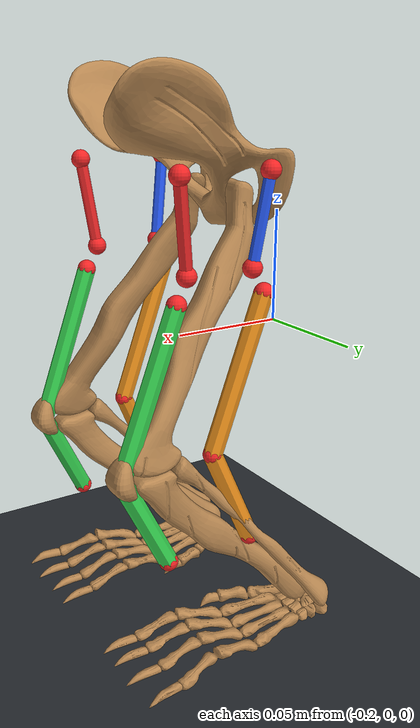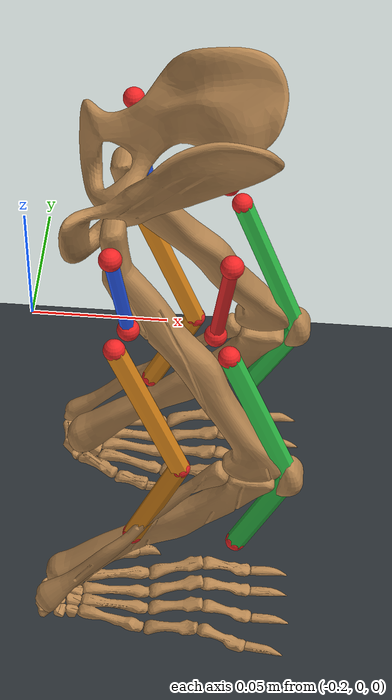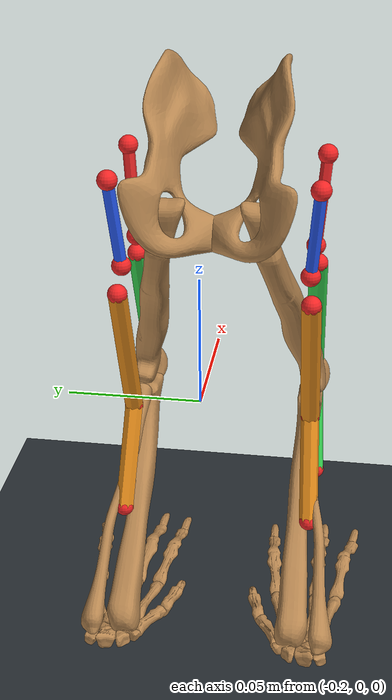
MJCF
<mujoco model="monkey_lower_body">
  <!-- STL の座標は cm 単位。各メッシュは同じ座標系で作成されている。 -->
  <compiler angle="degree" meshdir="../meshes/monkey/lower_body"/>

  <option timestep="0.002" integrator="implicitfast"/>
  <visual>
    <global offwidth="1280" offheight="720"/>
    <headlight diffuse="0.7 0.7 0.7" ambient="0.25 0.25 0.25" specular="0.15 0.15 0.15"/>
  </visual>

  <default>
    <!-- 骨メッシュ同士の自己衝突は使わず、関節と腱で運動を定義する。 -->
    <geom type="mesh" contype="0" conaffinity="0" rgba="0.72 0.53 0.32 1"/>
    <joint damping="0.08" armature="0.002" limited="true"/>
    <site type="sphere" size="0.004" rgba="0.95 0.15 0.15 0.9"/>
  </default>

  <asset>
    <mesh name="hip_bone"      file="hip_bone.stl"      scale="0.01 0.01 0.01"/>
    <mesh name="left_femur"    file="left_femur.stl"    scale="0.01 0.01 0.01"/>
    <mesh name="right_femur"   file="right_femur.stl"   scale="0.01 0.01 0.01"/>
    <mesh name="left_tibia"    file="left_tibia.stl"    scale="0.01 0.01 0.01"/>
    <mesh name="right_tibia"   file="right_tibia.stl"   scale="0.01 0.01 0.01"/>
    <mesh name="left_fibula"   file="left_fibula.stl"   scale="0.01 0.01 0.01"/>
    <mesh name="right_fibula"  file="right_fibula.stl"  scale="0.01 0.01 0.01"/>
    <mesh name="left_patella"  file="left_patella.stl"  scale="0.01 0.01 0.01"/>
    <mesh name="right_patella" file="right_patella.stl" scale="0.01 0.01 0.01"/>
    <mesh name="left_toes"     file="left_toes.stl"     scale="0.01 0.01 0.01"/>
    <mesh name="right_toes"    file="right_toes.stl"    scale="0.01 0.01 0.01"/>
  </asset>

  <worldbody>
    <light name="key" pos="-0.1 -0.4 0.35" dir="0.1 0.4 -0.35" directional="true"/>
    <geom name="ground" type="plane" size="1 1 0.1" pos="0 0 -0.13" rgba="0.16 0.18 0.20 1"/>

    <!--
      各 body 原点を関節中心に置き、mesh geom にはその逆並進を与える。
      qpos=0 では STL の元の共通座標配置が厳密に保たれる。
    -->
    <body name="pelvis">
      <geom name="hip_bone" mesh="hip_bone" mass="0.45"/>

      <!-- 股関節中心（m）。メッシュ上の大腿骨頭／寛骨臼に合わせる調整点。 -->
      <body name="left_femur_body" pos="-0.145 0.028 0.055">
        <joint name="left_hip" type="hinge" axis="0 1 0" range="-45 45"/>
        <geom name="left_femur" mesh="left_femur" pos="0.145 -0.028 -0.055" mass="0.22"/>
        <site name="left_flex_insertion" pos="0.015 0.009 -0.020"/>
        <site name="left_ext_insertion" pos="-0.015 0.009 -0.020"/>
        <!-- 大腿骨上部から下腿へ渡す、膝筋の起点。 -->
        <site name="left_knee_flex_origin" pos="-0.020 0.010 -0.030"/>
        <site name="left_knee_ext_origin" pos="0.020 0.010 -0.030"/>
        <!-- 遠位大腿骨のガイド点。腱を同じ側の下腿付着点へ導く。 -->
        <!-- 膝関節面の直後に置き、屈筋腱を関節の後方へ導く。 -->
        <site name="left_knee_flex_guide" pos="0.003 0.010 -0.094"/>

        <body name="left_shank" pos="0.005 0.002 -0.095">
          <!-- 正方向を後屈に使用し、大腿骨側へ折れ込む前屈は 15° に制限する。 -->
          <joint name="left_knee" type="hinge" axis="0 1 0" range="-15 100"/>
          <geom name="left_tibia" mesh="left_tibia" pos="0.140 -0.030 0.040" mass="0.18"/>
          <geom name="left_fibula" mesh="left_fibula" pos="0.140 -0.030 0.040" mass="0.04"/>
          <geom name="left_patella" mesh="left_patella" pos="0.140 -0.030 0.040" mass="0.02"/>
          <!-- 足首関節は設けず、足先を下腿に固定する。 -->
          <geom name="left_toes" mesh="left_toes" pos="0.140 -0.030 0.040" mass="0.06"/>
          <site name="left_knee_flex_insertion" pos="-0.020 0.010 -0.040"/>
          <site name="left_knee_ext_insertion" pos="0.020 0.010 -0.040"/>
          <!-- 膝蓋骨メッシュの中心付近。伸筋腱の前方ガイドとして使う。 -->
          <site name="left_patella_guide" pos="0.039 0.007 -0.001"/>
        </body>
      </body>

      <body name="right_femur_body" pos="-0.145 -0.028 0.055">
        <joint name="right_hip" type="hinge" axis="0 1 0" range="-45 45"/>
        <geom name="right_femur" mesh="right_femur" pos="0.145 0.028 -0.055" mass="0.22"/>
        <site name="right_flex_insertion" pos="0.015 -0.009 -0.020"/>
        <site name="right_ext_insertion" pos="-0.015 -0.009 -0.020"/>
        <!-- 大腿骨上部から下腿へ渡す、膝筋の起点。 -->
        <site name="right_knee_flex_origin" pos="-0.020 -0.010 -0.030"/>
        <site name="right_knee_ext_origin" pos="0.020 -0.010 -0.030"/>
        <!-- 遠位大腿骨のガイド点。腱を同じ側の下腿付着点へ導く。 -->
        <!-- 膝関節面の直後に置き、屈筋腱を関節の後方へ導く。 -->
        <site name="right_knee_flex_guide" pos="0.003 -0.010 -0.094"/>

        <body name="right_shank" pos="0.005 -0.002 -0.095">
          <!-- 正方向を後屈に使用し、大腿骨側へ折れ込む前屈は 15° に制限する。 -->
          <joint name="right_knee" type="hinge" axis="0 1 0" range="-15 100"/>
          <geom name="right_tibia" mesh="right_tibia" pos="0.140 0.030 0.040" mass="0.18"/>
          <geom name="right_fibula" mesh="right_fibula" pos="0.140 0.030 0.040" mass="0.04"/>
          <geom name="right_patella" mesh="right_patella" pos="0.140 0.030 0.040" mass="0.02"/>
          <!-- 足首関節は設けず、足先を下腿に固定する。 -->
          <geom name="right_toes" mesh="right_toes" pos="0.140 0.030 0.040" mass="0.06"/>
          <site name="right_knee_flex_insertion" pos="-0.020 -0.010 -0.040"/>
          <site name="right_knee_ext_insertion" pos="0.020 -0.010 -0.040"/>
          <!-- 膝蓋骨メッシュの中心付近。伸筋腱の前方ガイドとして使う。 -->
          <site name="right_patella_guide" pos="0.039 -0.007 -0.001"/>
        </body>
      </body>

      <!-- origin は骨盤座標、insertion は各大腿 body 座標に属する。 -->
      <site name="left_flex_origin" pos="-0.125 0.040 0.072"/>
      <site name="left_ext_origin" pos="-0.165 0.040 0.072"/>
      <site name="right_flex_origin" pos="-0.125 -0.040 0.072"/>
      <site name="right_ext_origin" pos="-0.165 -0.040 0.072"/>
    </body>
  </worldbody>

  <tendon>
    <spatial name="left_hip_flexor" width="0.0025" rgba="0.9 0.15 0.15 1">
      <site site="left_flex_origin"/>
      <site site="left_flex_insertion"/>
    </spatial>
    <spatial name="left_hip_extensor" width="0.0025" rgba="0.15 0.35 0.95 1">
      <site site="left_ext_origin"/>
      <site site="left_ext_insertion"/>
    </spatial>
    <spatial name="right_hip_flexor" width="0.0025" rgba="0.9 0.15 0.15 1">
      <site site="right_flex_origin"/>
      <site site="right_flex_insertion"/>
    </spatial>
    <spatial name="right_hip_extensor" width="0.0025" rgba="0.15 0.35 0.95 1">
      <site site="right_ext_origin"/>
      <site site="right_ext_insertion"/>
    </spatial>
    <!-- 大腿骨から下腿へ交差する、膝の拮抗筋ペア。 -->
    <spatial name="left_knee_flexor" width="0.004" rgba="0.9 0.55 0.10 1">
      <site site="left_knee_flex_origin"/>
      <site site="left_knee_flex_guide"/>
      <site site="left_knee_flex_insertion"/>
    </spatial>
    <spatial name="left_knee_extensor" width="0.004" rgba="0.20 0.80 0.30 1">
      <site site="left_knee_ext_origin"/>
      <site site="left_patella_guide"/>
      <site site="left_knee_ext_insertion"/>
    </spatial>
    <spatial name="right_knee_flexor" width="0.004" rgba="0.9 0.55 0.10 1">
      <site site="right_knee_flex_origin"/>
      <site site="right_knee_flex_guide"/>
      <site site="right_knee_flex_insertion"/>
    </spatial>
    <spatial name="right_knee_extensor" width="0.004" rgba="0.20 0.80 0.30 1">
      <site site="right_knee_ext_origin"/>
      <site site="right_patella_guide"/>
      <site site="right_knee_ext_insertion"/>
    </spatial>
  </tendon>

  <actuator>
    <muscle name="left_hip_flexor" tendon="left_hip_flexor" ctrlrange="0 1" force="35"/>
    <muscle name="left_hip_extensor" tendon="left_hip_extensor" ctrlrange="0 1" force="35"/>
    <muscle name="right_hip_flexor" tendon="right_hip_flexor" ctrlrange="0 1" force="35"/>
    <muscle name="right_hip_extensor" tendon="right_hip_extensor" ctrlrange="0 1" force="35"/>
    <muscle name="left_knee_flexor" tendon="left_knee_flexor" ctrlrange="0 1" force="500"/>
    <muscle name="left_knee_extensor" tendon="left_knee_extensor" ctrlrange="0 1" force="25"/>
    <muscle name="right_knee_flexor" tendon="right_knee_flexor" ctrlrange="0 1" force="500"/>
    <muscle name="right_knee_extensor" tendon="right_knee_extensor" ctrlrange="0 1" force="25"/>
  </actuator>

  <statistic center="-0.15 0 -0.01" extent="0.30"/>
</mujoco>
